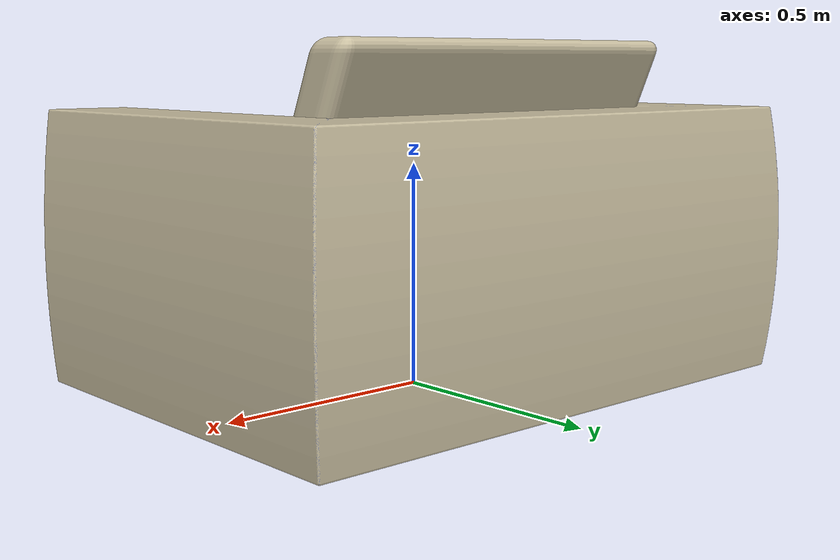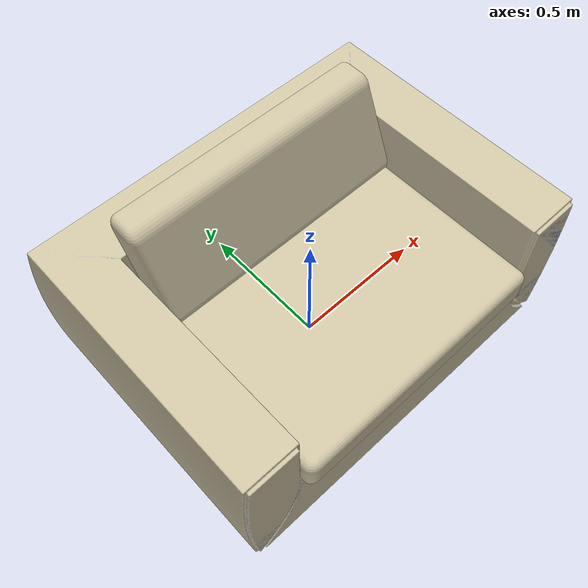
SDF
<?xml version='1.0'?>
<sdf version='1.6'>
  <model name='chair_set_2'>
    <link name='link_10'>
      <pose frame=''>0.020402 -0.647852 0 0 -0 0</pose>
       <visual name='visual_frame'>
        <pose frame=''>0 0 0 0 -0 0</pose>
        <geometry>
          <mesh>
            <uri>model://chair_set_2/meshes/chair_frame.dae</uri>
            <scale>1 1 1</scale>
          </mesh>
        </geometry>
           <material>
          <script>
            <uri>model://chair_set_2/materials/scripts</uri>
            <uri>model://chair_set_2/materials/textures</uri>
            <name>chair_set_2</name>
          </script>
        </material>
        <cast_shadows>1</cast_shadows>
        <transparency>0</transparency>
      </visual>

      <visual name='visual_cushions'>
        <pose frame=''>0 0 0 0 -0 0</pose>
        <geometry>
          <mesh>
            <uri>model://chair_set_2/meshes/chair_cushions.dae</uri>
            <scale>1 1 1</scale>
          </mesh>
        </geometry>
           <material>
          <script>
            <uri>model://chair_set_2/materials/scripts</uri>
            <uri>model://chair_set_2/materials/textures</uri>
            <name>chair_set_2</name>
          </script>
        </material>
        <cast_shadows>1</cast_shadows>
        <transparency>0</transparency>
      </visual>
      <collision name='collision'>
        <laser_retro>0</laser_retro>
        <max_contacts>10</max_contacts>
        <pose frame=''>-0.02975 0.657 0.219 0 0 0</pose>
        <geometry>
          <box>
            <size>1.32 0.97 0.45</size>
          </box>
        </geometry>

      </collision>

    </link>
    <static>1</static>
    <allow_auto_disable>1</allow_auto_disable>
  </model>
</sdf>
